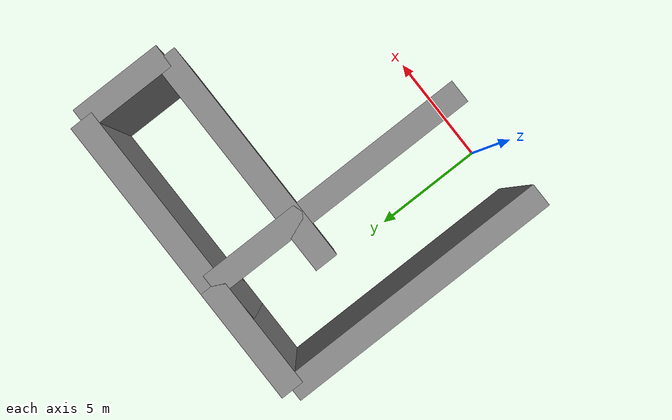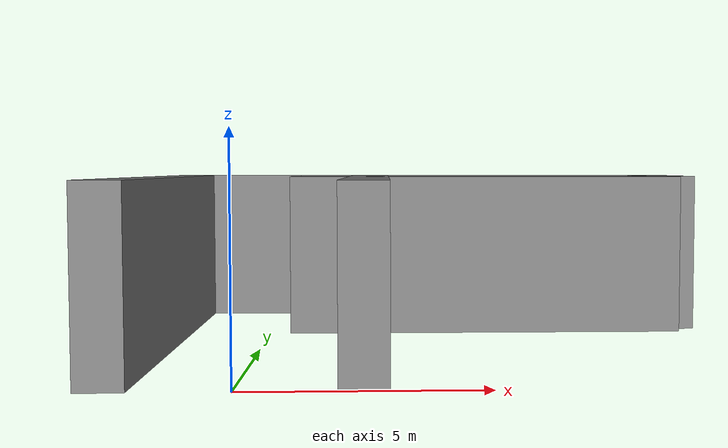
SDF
<?xml version="1.0" ?>
<sdf version="1.10">
  <model name="Cenario3">
    <static>true</static>
    <pose>0 0 0 0 0 0</pose>

    <!-- Parede Lateral Esquerda -->
    <link name='parede_esquerda'>
      <pose>-2.5 6 2 0 0 0</pose>
      <collision name='collision_parede_esquerda'>
        <geometry>
          <box>
            <size>1 12 4</size>
          </box>
        </geometry>
      </collision>
      <visual name='visual_parede_esquerda'>
        <geometry>
          <box>
            <size>1 12 4</size>
          </box>
        </geometry>
        <material>
          <ambient>0.5 0.5 0.5 1</ambient>
          <diffuse>0.5 0.5 0.5 1</diffuse>
          <specular>0.2 0.2 0.2 1</specular>
        </material>
      </visual>
    </link>

    <!-- Parede Lateral Direita -->
    <link name='parede_direita'>
      <pose>2.5 6 2 0 0 0</pose>
      <collision name='collision_parede_direita'>
        <geometry>
          <box>
            <size>1 12 4</size>
          </box>
        </geometry>
      </collision>
      <visual name='visual_parede_direita'>
        <geometry>
          <box>
            <size>1 12 4</size>
          </box>
        </geometry>
        <material>
          <ambient>0.5 0.5 0.5 1</ambient>
          <diffuse>0.5 0.5 0.5 1</diffuse>
          <specular>0.2 0.2 0.2 1</specular>
        </material>
      </visual>
    </link>

    <!-- Parede do Fundo -->
    <link name='parede_fundo'>
      <pose>0 12 2 0 0 0</pose>
      <collision name='collision_parede_fundo'>
        <geometry>
          <box>
            <size>5 1 4</size>
          </box>
        </geometry>
      </collision>
      <visual name='visual_parede_fundo'>
        <geometry>
          <box>
            <size>5 1 4</size>
          </box>
        </geometry>
        <material>
          <ambient>0.5 0.5 0.5 1</ambient>
          <diffuse>0.5 0.5 0.5 1</diffuse>
          <specular>0.2 0.2 0.2 1</specular>
        </material>
      </visual>
    </link>

    <!-- Parede Lateral Superior (corredor horizontal) -->
    <link name='parede_lateral_superior'>
      <pose>5.5 12 2 0 0 0</pose>
      <collision name='collision_parede_lateral_superior'>
        <geometry>
          <box>
            <size>10 1 4</size>
          </box>
        </geometry>
      </collision>
      <visual name='visual_parede_lateral_superior'>
        <geometry>
          <box>
            <size>10 1 4</size>
          </box>
        </geometry>
        <material>
          <ambient>0.5 0.5 0.5 1</ambient>
          <diffuse>0.5 0.5 0.5 1</diffuse>
          <specular>0.2 0.2 0.2 1</specular>
        </material>
      </visual>
    </link>

    <!-- Parede Lateral Inferior (corredor horizontal) -->
    <link name='parede_lateral_inferior'>
      <pose>5.5 8 2 0 0 0</pose>
      <collision name='collision_parede_lateral_inferior'>
        <geometry>
          <box>
            <size>10 1 4</size>
          </box>
        </geometry>
      </collision>
      <visual name='visual_parede_lateral_inferior'>
        <geometry>
          <box>
            <size>10 1 4</size>
          </box>
        </geometry>
        <material>
          <ambient>0.5 0.5 0.5 1</ambient>
          <diffuse>0.5 0.5 0.5 1</diffuse>
          <specular>0.2 0.2 0.2 1</specular>
        </material>
      </visual>
    </link>

    <!-- Parede Final (fecha corredor horizontal) -->
    <link name='parede_final'>
      <pose>10.5 10 2 0 0 0</pose>
      <collision name='collision_parede_final'>
        <geometry>
          <box>
            <size>1 4 4</size>
          </box>
        </geometry>
      </collision>
      <visual name='visual_parede_final'>
        <geometry>
          <box>
            <size>1 4 4</size>
          </box>
        </geometry>
        <material>
          <ambient>0.5 0.5 0.5 1</ambient>
          <diffuse>0.5 0.5 0.5 1</diffuse>
          <specular>0.2 0.2 0.2 1</specular>
        </material>
      </visual>
    </link>

  </model>
</sdf>
